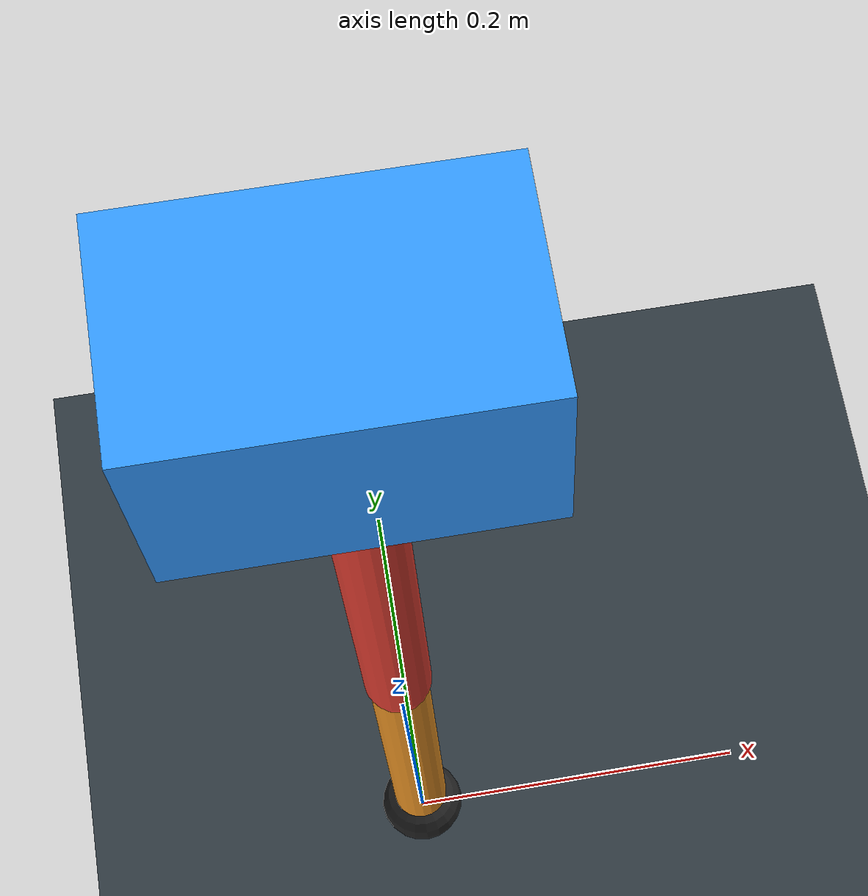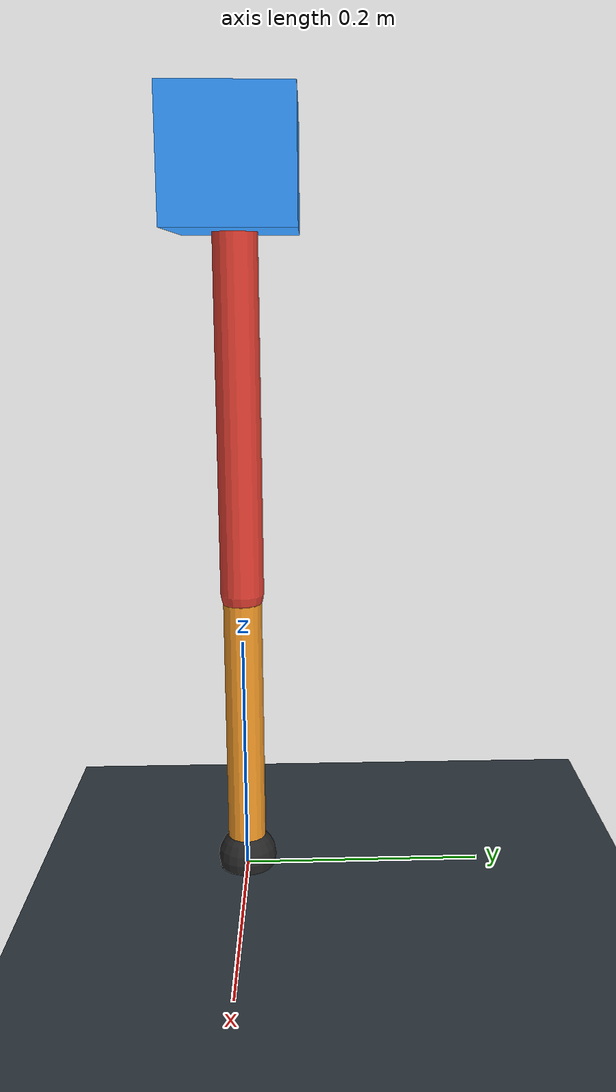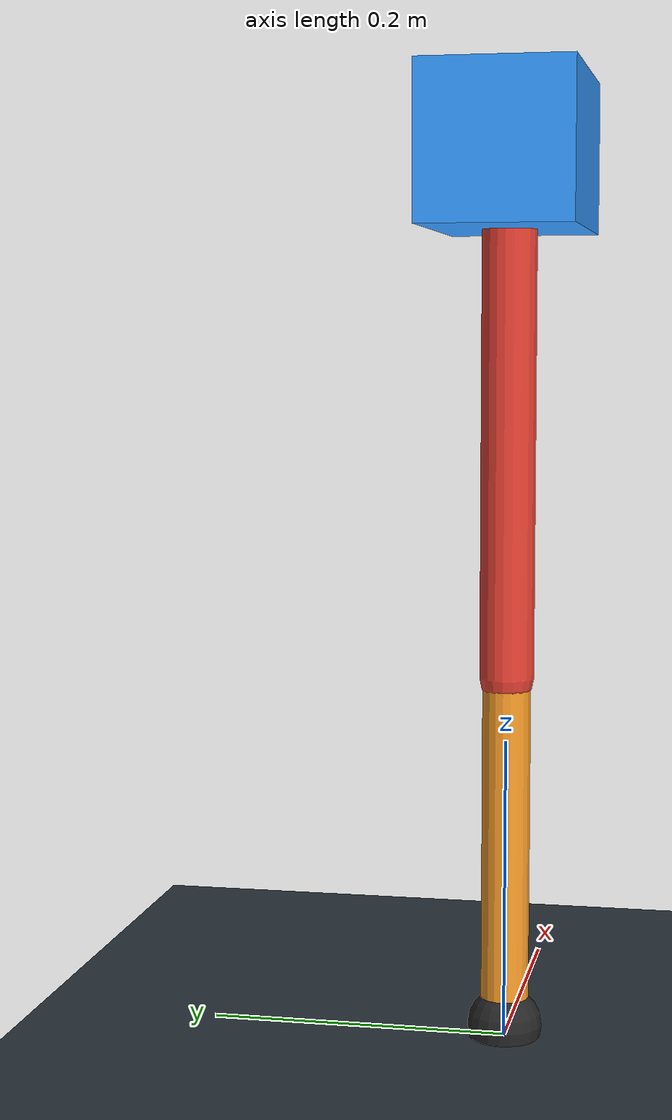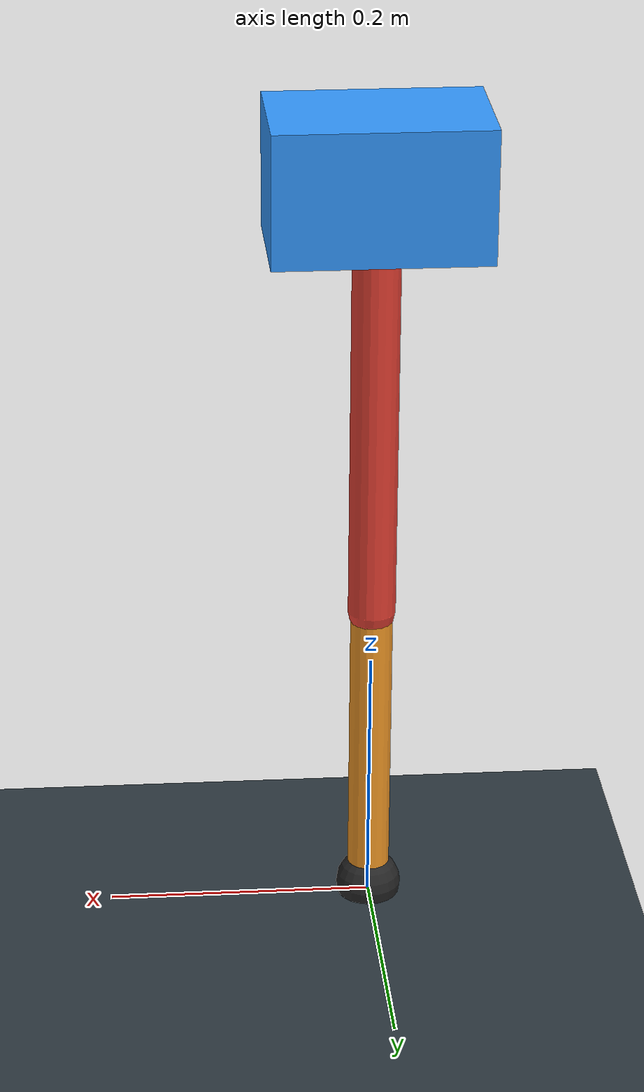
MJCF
<mujoco model="single_axis_two_bar">
  <compiler angle="radian" inertiafromgeom="true"/>
  <option timestep="0.001" integrator="implicitfast" gravity="0 0 -9.81"/>
  <default>
    <joint damping="0.08"/>
    <geom friction="1.2 0.01 0.0001" condim="3"/>
  </default>
  <worldbody>
    <geom name="floor" type="plane" size="5 5 0.1" rgba="0.18 0.22 0.25 1"/>
    <body name="carriage" pos="0 0 0.5848329975814094">
      <joint name="pole_slide" type="slide" axis="0 0 1"/>
      <geom name="payload" type="box" size="0.08 0.05 0.05" mass="2.2835596196523555" rgba="0.2 0.6 1 1"/>
      <body name="thigh" pos="0 0 0">
        <joint name="hip" type="hinge" axis="0 1 0"/>
        <geom name="thigh_link" type="capsule" fromto="0 0 0 0 0 -0.34244460353155826" size="0.018" mass="0.24399630502243702" rgba="0.9 0.25 0.2 1"/>
        <body name="shank" pos="0 0 -0.34244460353155826">
          <joint name="knee" type="hinge" axis="0 1 0"/>
          <geom name="shank_link" type="capsule" fromto="0 0 0 0 0 -0.2347028166554616" size="0.016" mass="0.16722885819111374" rgba="0.95 0.6 0.15 1"/>
          <geom name="foot" type="sphere" pos="0 0 -0.2347028166554616" size="0.025" mass="0.03" rgba="0.15 0.15 0.15 1"/>
          <site name="toe" pos="0 0 -0.2347028166554616" size="0.008"/>
        </body>
      </body>
    </body>
  </worldbody>
  <actuator>
    <motor name="hip_motor" joint="hip" ctrlrange="-38.962938660026566 38.962938660026566"/>
    <motor name="knee_motor" joint="knee" ctrlrange="-63.235958744815534 63.235958744815534"/>
  </actuator>
</mujoco>
